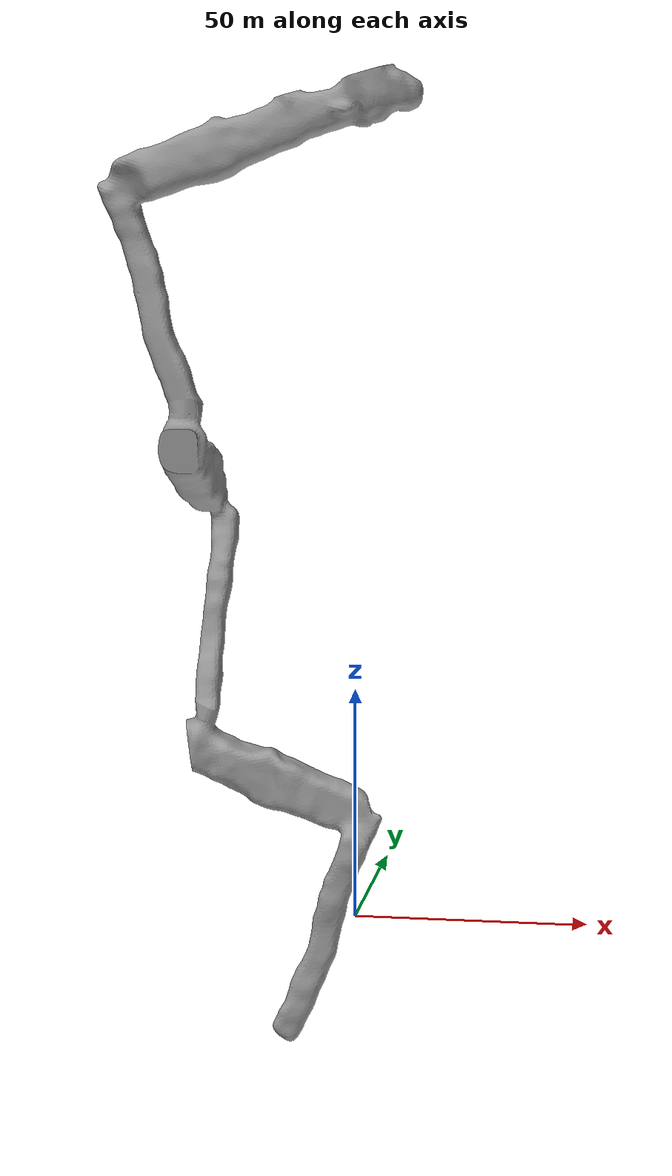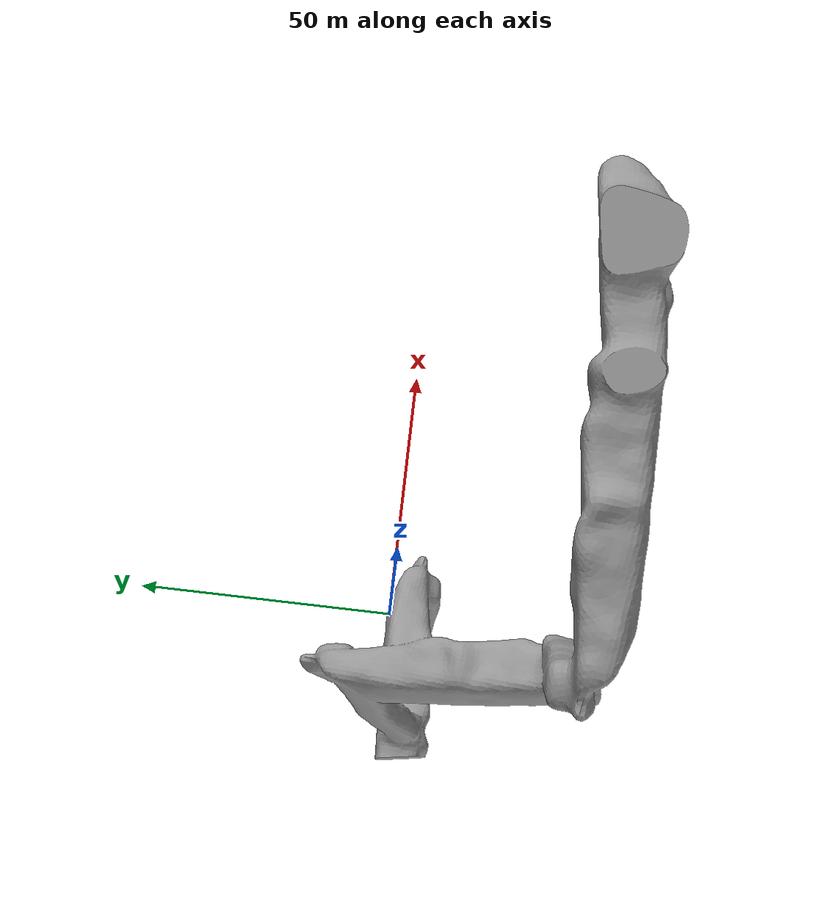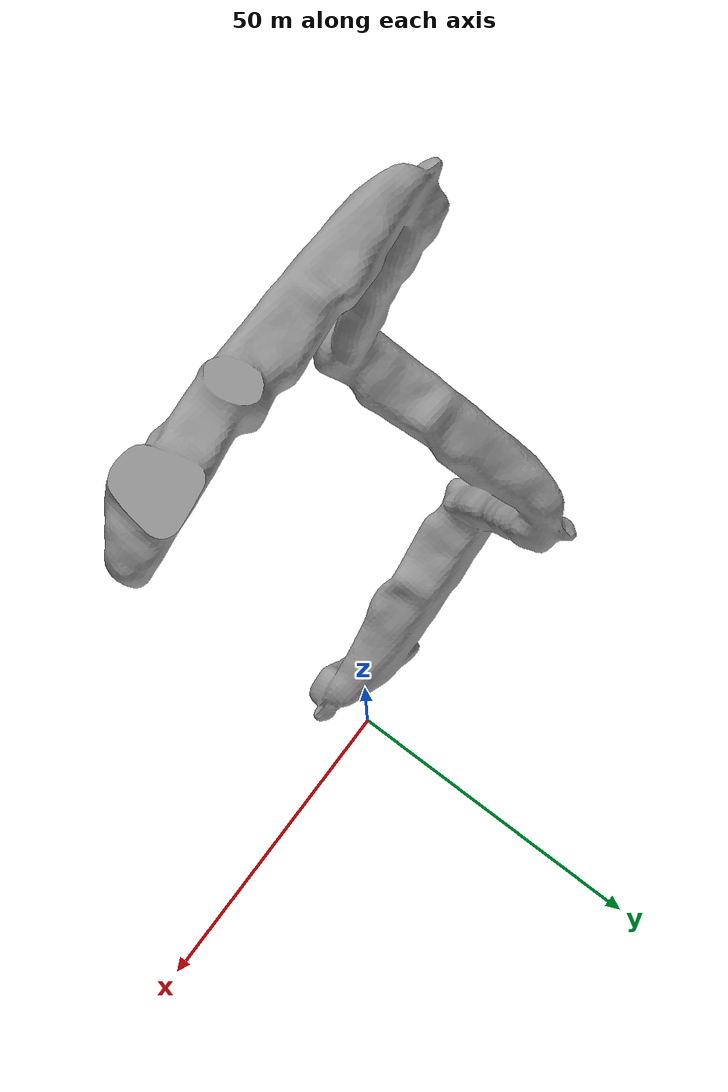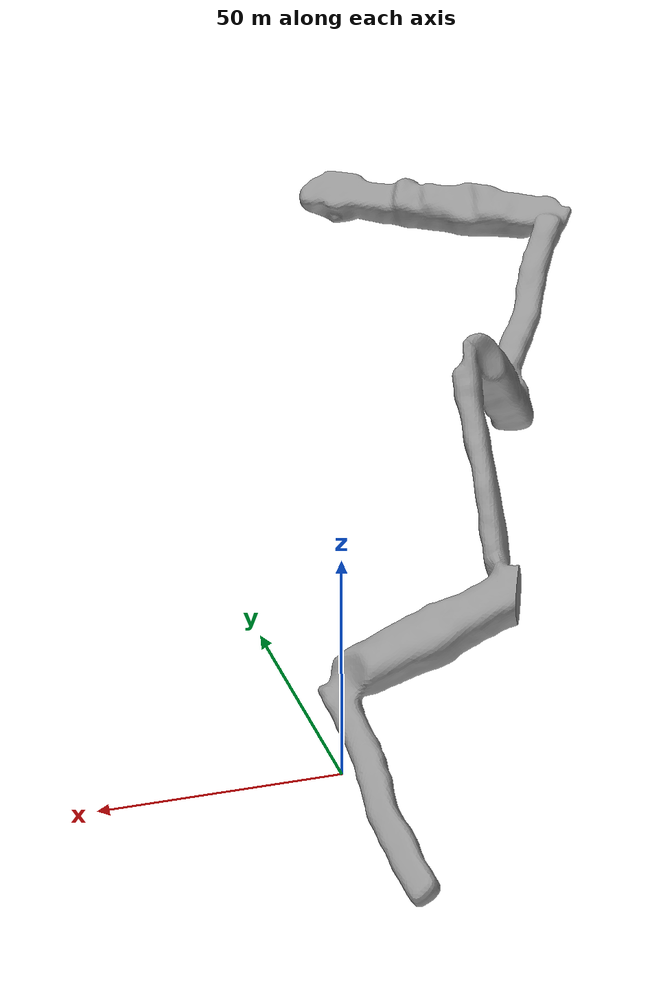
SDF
<?xml version="1.0"?>
<sdf version="1.6">
    <model name="mine_moes">
      <pose frame=''>0 0 0  0 0 0</pose>
      <static>true</static>
      <link name="body">
        <collision name="body_collision">
          <geometry>
            <mesh>
              <uri>model://mine_moes/meshes/mine_moes.dae</uri>
              <scale>1 1 1</scale>
            </mesh>
          </geometry>
        </collision>
        <visual name="body_visual">
          <geometry>
            <mesh>
              <uri>model://mine_moes/meshes/mine_moes.dae</uri>
              <scale>1 1 1</scale>
            </mesh>
          </geometry>
          <material>
          <script>
            <uri>file://media/materials/scripts/gazebo.material</uri>
            <name>Gazebo/Grey</name>
          </script>
          <ambient>1 1 1 1</ambient>
        </material>
        </visual>
      </link>
      <static>1</static>
    </model>
</sdf>
